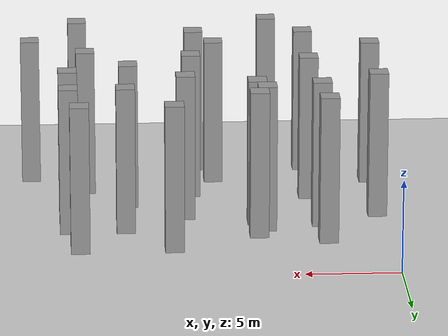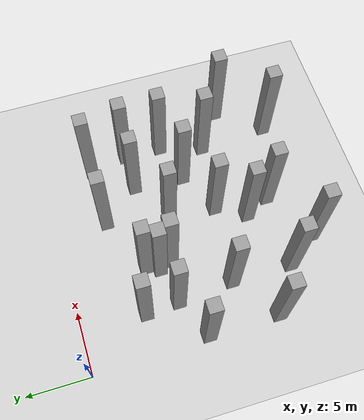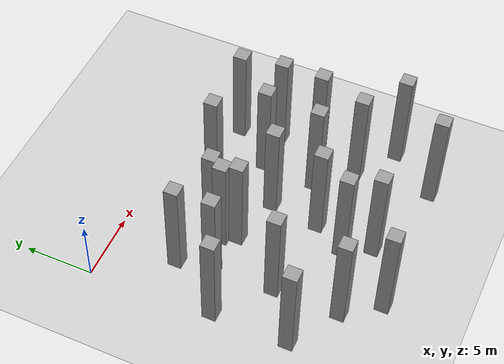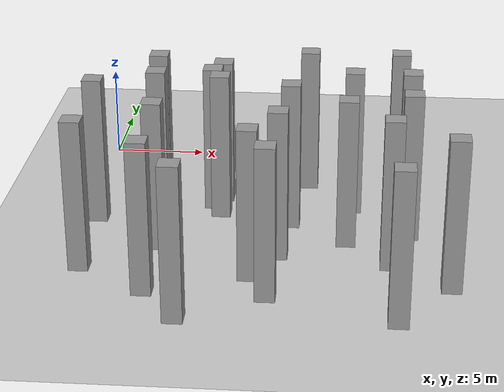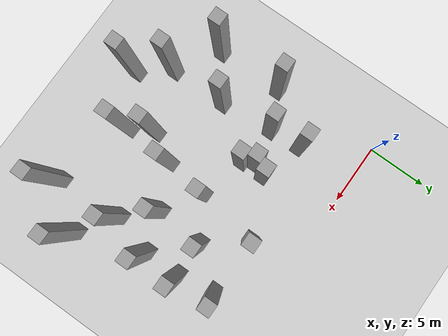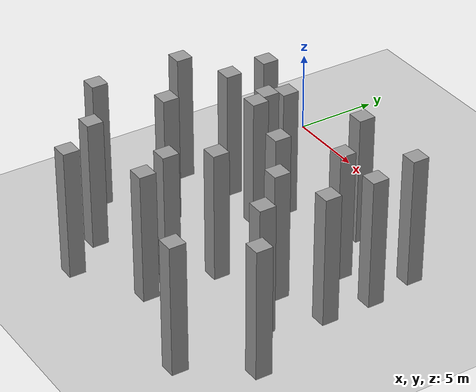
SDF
<sdf version="1.7">
 <world name="default">
  <model name="ground_plane">
   <static>1</static>
   <link name="link">
    <collision name="collision">
     <geometry><plane><normal>0 0 1</normal><size>100 100</size></plane></geometry>
     <surface>
      <contact><collide_bitmask>65535</collide_bitmask></contact>
      <friction><ode><mu>100</mu><mu2>50</mu2></ode></friction>
     </surface>
    </collision>
    <visual name="visual">
     <cast_shadows>0</cast_shadows>
     <geometry><plane><normal>0 0 1</normal><size>100 100</size></plane></geometry>
     <material>
      <script><uri>file://media/materials/scripts/gazebo.material</uri><name>Gazebo/Grey</name></script>
     </material>
    </visual>
   </link>
  </model>
  <model name="unit_box_static95_clone_52_clone_clone_17">
   <link name="link">
    <inertial>
     <mass>1</mass>
     <inertia>
      <ixx>0.166667</ixx>
      <ixy>0</ixy>
      <ixz>0</ixz>
      <iyy>0.166667</iyy>
      <iyz>0</iyz>
      <izz>0.166667</izz>
     </inertia>
    </inertial>
    <visual name="visual">
     <geometry><box><size>1 1 8</size></box></geometry>
     <material>
      <script><name>Gazebo/Grey</name><uri>file://media/materials/scripts/gazebo.material</uri></script>
      <shader type="pixel"/>
     </material>
    </visual>
    <collision name="collision">
     <geometry><box><size>1 1 8</size></box></geometry>
     <surface>
      <friction>
       <ode><mu>1</mu><mu2>1</mu2><fdir1>0 0 0</fdir1><slip1>0</slip1><slip2>0</slip2></ode>
       <torsional>
        <coefficient>1</coefficient>
        <patch_radius>0</patch_radius>
        <surface_radius>0</surface_radius>
        <use_patch_radius>1</use_patch_radius>
        <ode><slip>0</slip></ode>
       </torsional>
      </friction>
      <bounce><restitution_coefficient>0</restitution_coefficient><threshold>1e+06</threshold></bounce>
      <contact>
       <collide_without_contact>0</collide_without_contact>
       <collide_without_contact_bitmask>1</collide_without_contact_bitmask>
       <collide_bitmask>1</collide_bitmask>
       <ode>
        <soft_cfm>0</soft_cfm>
        <soft_erp>0.2</soft_erp>
        <kp>1e+13</kp>
        <kd>1</kd>
        <max_vel>0.01</max_vel>
        <min_depth>0</min_depth>
       </ode>
       <bullet>
        <split_impulse>1</split_impulse>
        <split_impulse_penetration_threshold>-0.01</split_impulse_penetration_threshold>
        <soft_cfm>0</soft_cfm>
        <soft_erp>0.2</soft_erp>
        <kp>1e+13</kp>
        <kd>1</kd>
       </bullet>
      </contact>
     </surface>
    </collision>
   </link>
   <static>1</static>
   <pose>6.52958 -7 4 0 -0 0</pose>
  </model>
  <model name="unit_box_static95_clone_52_clone_clone_18">
   <link name="link">
    <inertial>
     <mass>1</mass>
     <inertia>
      <ixx>0.166667</ixx>
      <ixy>0</ixy>
      <ixz>0</ixz>
      <iyy>0.166667</iyy>
      <iyz>0</iyz>
      <izz>0.166667</izz>
     </inertia>
    </inertial>
    <visual name="visual">
     <geometry><box><size>1 1 8</size></box></geometry>
     <material>
      <script><name>Gazebo/Grey</name><uri>file://media/materials/scripts/gazebo.material</uri></script>
      <shader type="pixel"/>
     </material>
    </visual>
    <collision name="collision">
     <geometry><box><size>1 1 8</size></box></geometry>
     <surface>
      <friction>
       <ode><mu>1</mu><mu2>1</mu2><fdir1>0 0 0</fdir1><slip1>0</slip1><slip2>0</slip2></ode>
       <torsional>
        <coefficient>1</coefficient>
        <patch_radius>0</patch_radius>
        <surface_radius>0</surface_radius>
        <use_patch_radius>1</use_patch_radius>
        <ode><slip>0</slip></ode>
       </torsional>
      </friction>
      <bounce><restitution_coefficient>0</restitution_coefficient><threshold>1e+06</threshold></bounce>
      <contact>
       <collide_without_contact>0</collide_without_contact>
       <collide_without_contact_bitmask>1</collide_without_contact_bitmask>
       <collide_bitmask>1</collide_bitmask>
       <ode>
        <soft_cfm>0</soft_cfm>
        <soft_erp>0.2</soft_erp>
        <kp>1e+13</kp>
        <kd>1</kd>
        <max_vel>0.01</max_vel>
        <min_depth>0</min_depth>
       </ode>
       <bullet>
        <split_impulse>1</split_impulse>
        <split_impulse_penetration_threshold>-0.01</split_impulse_penetration_threshold>
        <soft_cfm>0</soft_cfm>
        <soft_erp>0.2</soft_erp>
        <kp>1e+13</kp>
        <kd>1</kd>
       </bullet>
      </contact>
     </surface>
    </collision>
   </link>
   <static>1</static>
   <pose>3.40813 -5 4 0 -0 0</pose>
  </model>
  <model name="unit_box_static95_clone_52_clone_clone_42">
   <link name="link">
    <inertial>
     <mass>1</mass>
     <inertia>
      <ixx>0.166667</ixx>
      <ixy>0</ixy>
      <ixz>0</ixz>
      <iyy>0.166667</iyy>
      <iyz>0</iyz>
      <izz>0.166667</izz>
     </inertia>
    </inertial>
    <visual name="visual">
     <geometry><box><size>1 1 8</size></box></geometry>
     <material>
      <script><name>Gazebo/Grey</name><uri>file://media/materials/scripts/gazebo.material</uri></script>
      <shader type="pixel"/>
     </material>
    </visual>
    <collision name="collision">
     <geometry><box><size>1 1 8</size></box></geometry>
     <surface>
      <friction>
       <ode><mu>1</mu><mu2>1</mu2><fdir1>0 0 0</fdir1><slip1>0</slip1><slip2>0</slip2></ode>
       <torsional>
        <coefficient>1</coefficient>
        <patch_radius>0</patch_radius>
        <surface_radius>0</surface_radius>
        <use_patch_radius>1</use_patch_radius>
        <ode><slip>0</slip></ode>
       </torsional>
      </friction>
      <bounce><restitution_coefficient>0</restitution_coefficient><threshold>1e+06</threshold></bounce>
      <contact>
       <collide_without_contact>0</collide_without_contact>
       <collide_without_contact_bitmask>1</collide_without_contact_bitmask>
       <collide_bitmask>1</collide_bitmask>
       <ode>
        <soft_cfm>0</soft_cfm>
        <soft_erp>0.2</soft_erp>
        <kp>1e+13</kp>
        <kd>1</kd>
        <max_vel>0.01</max_vel>
        <min_depth>0</min_depth>
       </ode>
       <bullet>
        <split_impulse>1</split_impulse>
        <split_impulse_penetration_threshold>-0.01</split_impulse_penetration_threshold>
        <soft_cfm>0</soft_cfm>
        <soft_erp>0.2</soft_erp>
        <kp>1e+13</kp>
        <kd>1</kd>
       </bullet>
      </contact>
     </surface>
    </collision>
   </link>
   <static>1</static>
   <pose>0.491745 -14.561 4 0 -0 0</pose>
  </model>
  <model name="unit_box_static95_clone_52_clone_clone_43">
   <link name="link">
    <inertial>
     <mass>1</mass>
     <inertia>
      <ixx>0.166667</ixx>
      <ixy>0</ixy>
      <ixz>0</ixz>
      <iyy>0.166667</iyy>
      <iyz>0</iyz>
      <izz>0.166667</izz>
     </inertia>
    </inertial>
    <visual name="visual">
     <geometry><box><size>1 1 8</size></box></geometry>
     <material>
      <script><name>Gazebo/Grey</name><uri>file://media/materials/scripts/gazebo.material</uri></script>
      <shader type="pixel"/>
     </material>
    </visual>
    <collision name="collision">
     <geometry><box><size>1 1 8</size></box></geometry>
     <surface>
      <friction>
       <ode><mu>1</mu><mu2>1</mu2><fdir1>0 0 0</fdir1><slip1>0</slip1><slip2>0</slip2></ode>
       <torsional>
        <coefficient>1</coefficient>
        <patch_radius>0</patch_radius>
        <surface_radius>0</surface_radius>
        <use_patch_radius>1</use_patch_radius>
        <ode><slip>0</slip></ode>
       </torsional>
      </friction>
      <bounce><restitution_coefficient>0</restitution_coefficient><threshold>1e+06</threshold></bounce>
      <contact>
       <collide_without_contact>0</collide_without_contact>
       <collide_without_contact_bitmask>1</collide_without_contact_bitmask>
       <collide_bitmask>1</collide_bitmask>
       <ode>
        <soft_cfm>0</soft_cfm>
        <soft_erp>0.2</soft_erp>
        <kp>1e+13</kp>
        <kd>1</kd>
        <max_vel>0.01</max_vel>
        <min_depth>0</min_depth>
       </ode>
       <bullet>
        <split_impulse>1</split_impulse>
        <split_impulse_penetration_threshold>-0.01</split_impulse_penetration_threshold>
        <soft_cfm>0</soft_cfm>
        <soft_erp>0.2</soft_erp>
        <kp>1e+13</kp>
        <kd>1</kd>
       </bullet>
      </contact>
     </surface>
    </collision>
   </link>
   <static>1</static>
   <pose>4 -16.8143 4 0 -0 0</pose>
  </model>
  <model name="unit_box_static95_clone_52_clone_clone_44">
   <link name="link">
    <inertial>
     <mass>1</mass>
     <inertia>
      <ixx>0.166667</ixx>
      <ixy>0</ixy>
      <ixz>0</ixz>
      <iyy>0.166667</iyy>
      <iyz>0</iyz>
      <izz>0.166667</izz>
     </inertia>
    </inertial>
    <visual name="visual">
     <geometry><box><size>1 1 8</size></box></geometry>
     <material>
      <script><name>Gazebo/Grey</name><uri>file://media/materials/scripts/gazebo.material</uri></script>
      <shader type="pixel"/>
     </material>
    </visual>
    <collision name="collision">
     <geometry><box><size>1 1 8</size></box></geometry>
     <surface>
      <friction>
       <ode><mu>1</mu><mu2>1</mu2><fdir1>0 0 0</fdir1><slip1>0</slip1><slip2>0</slip2></ode>
       <torsional>
        <coefficient>1</coefficient>
        <patch_radius>0</patch_radius>
        <surface_radius>0</surface_radius>
        <use_patch_radius>1</use_patch_radius>
        <ode><slip>0</slip></ode>
       </torsional>
      </friction>
      <bounce><restitution_coefficient>0</restitution_coefficient><threshold>1e+06</threshold></bounce>
      <contact>
       <collide_without_contact>0</collide_without_contact>
       <collide_without_contact_bitmask>1</collide_without_contact_bitmask>
       <collide_bitmask>1</collide_bitmask>
       <ode>
        <soft_cfm>0</soft_cfm>
        <soft_erp>0.2</soft_erp>
        <kp>1e+13</kp>
        <kd>1</kd>
        <max_vel>0.01</max_vel>
        <min_depth>0</min_depth>
       </ode>
       <bullet>
        <split_impulse>1</split_impulse>
        <split_impulse_penetration_threshold>-0.01</split_impulse_penetration_threshold>
        <soft_cfm>0</soft_cfm>
        <soft_erp>0.2</soft_erp>
        <kp>1e+13</kp>
        <kd>1</kd>
       </bullet>
      </contact>
     </surface>
    </collision>
   </link>
   <static>1</static>
   <pose>4 -12 4 0 -0 0</pose>
  </model>
  <model name="unit_box_static95_clone_52_clone_clone_48">
   <link name="link">
    <inertial>
     <mass>1</mass>
     <inertia>
      <ixx>0.166667</ixx>
      <ixy>0</ixy>
      <ixz>0</ixz>
      <iyy>0.166667</iyy>
      <iyz>0</iyz>
      <izz>0.166667</izz>
     </inertia>
    </inertial>
    <visual name="visual">
     <geometry><box><size>1 1 8</size></box></geometry>
     <material>
      <script><name>Gazebo/Grey</name><uri>file://media/materials/scripts/gazebo.material</uri></script>
      <shader type="pixel"/>
     </material>
    </visual>
    <collision name="collision">
     <geometry><box><size>1 1 8</size></box></geometry>
     <surface>
      <friction>
       <ode><mu>1</mu><mu2>1</mu2><fdir1>0 0 0</fdir1><slip1>0</slip1><slip2>0</slip2></ode>
       <torsional>
        <coefficient>1</coefficient>
        <patch_radius>0</patch_radius>
        <surface_radius>0</surface_radius>
        <use_patch_radius>1</use_patch_radius>
        <ode><slip>0</slip></ode>
       </torsional>
      </friction>
      <bounce><restitution_coefficient>0</restitution_coefficient><threshold>1e+06</threshold></bounce>
      <contact>
       <collide_without_contact>0</collide_without_contact>
       <collide_without_contact_bitmask>1</collide_without_contact_bitmask>
       <collide_bitmask>1</collide_bitmask>
       <ode>
        <soft_cfm>0</soft_cfm>
        <soft_erp>0.2</soft_erp>
        <kp>1e+13</kp>
        <kd>1</kd>
        <max_vel>0.01</max_vel>
        <min_depth>0</min_depth>
       </ode>
       <bullet>
        <split_impulse>1</split_impulse>
        <split_impulse_penetration_threshold>-0.01</split_impulse_penetration_threshold>
        <soft_cfm>0</soft_cfm>
        <soft_erp>0.2</soft_erp>
        <kp>1e+13</kp>
        <kd>1</kd>
       </bullet>
      </contact>
     </surface>
    </collision>
   </link>
   <static>1</static>
   <pose>10.3235 -12.6654 4 0 -0 0</pose>
  </model>
  <model name="unit_box_static95_clone_52_clone_clone_50">
   <link name="link">
    <inertial>
     <mass>1</mass>
     <inertia>
      <ixx>0.166667</ixx>
      <ixy>0</ixy>
      <ixz>0</ixz>
      <iyy>0.166667</iyy>
      <iyz>0</iyz>
      <izz>0.166667</izz>
     </inertia>
    </inertial>
    <visual name="visual">
     <geometry><box><size>1 1 8</size></box></geometry>
     <material>
      <script><name>Gazebo/Grey</name><uri>file://media/materials/scripts/gazebo.material</uri></script>
      <shader type="pixel"/>
     </material>
    </visual>
    <collision name="collision">
     <geometry><box><size>1 1 8</size></box></geometry>
     <surface>
      <friction>
       <ode><mu>1</mu><mu2>1</mu2><fdir1>0 0 0</fdir1><slip1>0</slip1><slip2>0</slip2></ode>
       <torsional>
        <coefficient>1</coefficient>
        <patch_radius>0</patch_radius>
        <surface_radius>0</surface_radius>
        <use_patch_radius>1</use_patch_radius>
        <ode><slip>0</slip></ode>
       </torsional>
      </friction>
      <bounce><restitution_coefficient>0</restitution_coefficient><threshold>1e+06</threshold></bounce>
      <contact>
       <collide_without_contact>0</collide_without_contact>
       <collide_without_contact_bitmask>1</collide_without_contact_bitmask>
       <collide_bitmask>1</collide_bitmask>
       <ode>
        <soft_cfm>0</soft_cfm>
        <soft_erp>0.2</soft_erp>
        <kp>1e+13</kp>
        <kd>1</kd>
        <max_vel>0.01</max_vel>
        <min_depth>0</min_depth>
       </ode>
       <bullet>
        <split_impulse>1</split_impulse>
        <split_impulse_penetration_threshold>-0.01</split_impulse_penetration_threshold>
        <soft_cfm>0</soft_cfm>
        <soft_erp>0.2</soft_erp>
        <kp>1e+13</kp>
        <kd>1</kd>
       </bullet>
      </contact>
     </surface>
    </collision>
   </link>
   <static>1</static>
   <pose>9 -15 4 0 -0 0</pose>
  </model>
  <model name="unit_box_static95_clone_52_clone_clone_51">
   <link name="link">
    <inertial>
     <mass>1</mass>
     <inertia>
      <ixx>0.166667</ixx>
      <ixy>0</ixy>
      <ixz>0</ixz>
      <iyy>0.166667</iyy>
      <iyz>0</iyz>
      <izz>0.166667</izz>
     </inertia>
    </inertial>
    <visual name="visual">
     <geometry><box><size>1 1 8</size></box></geometry>
     <material>
      <script><name>Gazebo/Grey</name><uri>file://media/materials/scripts/gazebo.material</uri></script>
      <shader type="pixel"/>
     </material>
    </visual>
    <collision name="collision">
     <geometry><box><size>1 1 8</size></box></geometry>
     <surface>
      <friction>
       <ode><mu>1</mu><mu2>1</mu2><fdir1>0 0 0</fdir1><slip1>0</slip1><slip2>0</slip2></ode>
       <torsional>
        <coefficient>1</coefficient>
        <patch_radius>0</patch_radius>
        <surface_radius>0</surface_radius>
        <use_patch_radius>1</use_patch_radius>
        <ode><slip>0</slip></ode>
       </torsional>
      </friction>
      <bounce><restitution_coefficient>0</restitution_coefficient><threshold>1e+06</threshold></bounce>
      <contact>
       <collide_without_contact>0</collide_without_contact>
       <collide_without_contact_bitmask>1</collide_without_contact_bitmask>
       <collide_bitmask>1</collide_bitmask>
       <ode>
        <soft_cfm>0</soft_cfm>
        <soft_erp>0.2</soft_erp>
        <kp>1e+13</kp>
        <kd>1</kd>
        <max_vel>0.01</max_vel>
        <min_depth>0</min_depth>
       </ode>
       <bullet>
        <split_impulse>1</split_impulse>
        <split_impulse_penetration_threshold>-0.01</split_impulse_penetration_threshold>
        <soft_cfm>0</soft_cfm>
        <soft_erp>0.2</soft_erp>
        <kp>1e+13</kp>
        <kd>1</kd>
       </bullet>
      </contact>
     </surface>
    </collision>
   </link>
   <static>1</static>
   <pose>10 -17 4 0 -0 0</pose>
  </model>
  <model name="unit_box_static95_clone_52_clone_clone_52">
   <link name="link">
    <inertial>
     <mass>1</mass>
     <inertia>
      <ixx>0.166667</ixx>
      <ixy>0</ixy>
      <ixz>0</ixz>
      <iyy>0.166667</iyy>
      <iyz>0</iyz>
      <izz>0.166667</izz>
     </inertia>
    </inertial>
    <visual name="visual">
     <geometry><box><size>1 1 8</size></box></geometry>
     <material>
      <script><name>Gazebo/Grey</name><uri>file://media/materials/scripts/gazebo.material</uri></script>
      <shader type="pixel"/>
     </material>
    </visual>
    <collision name="collision">
     <geometry><box><size>1 1 8</size></box></geometry>
     <surface>
      <friction>
       <ode><mu>1</mu><mu2>1</mu2><fdir1>0 0 0</fdir1><slip1>0</slip1><slip2>0</slip2></ode>
       <torsional>
        <coefficient>1</coefficient>
        <patch_radius>0</patch_radius>
        <surface_radius>0</surface_radius>
        <use_patch_radius>1</use_patch_radius>
        <ode><slip>0</slip></ode>
       </torsional>
      </friction>
      <bounce><restitution_coefficient>0</restitution_coefficient><threshold>1e+06</threshold></bounce>
      <contact>
       <collide_without_contact>0</collide_without_contact>
       <collide_without_contact_bitmask>1</collide_without_contact_bitmask>
       <collide_bitmask>1</collide_bitmask>
       <ode>
        <soft_cfm>0</soft_cfm>
        <soft_erp>0.2</soft_erp>
        <kp>1e+13</kp>
        <kd>1</kd>
        <max_vel>0.01</max_vel>
        <min_depth>0</min_depth>
       </ode>
       <bullet>
        <split_impulse>1</split_impulse>
        <split_impulse_penetration_threshold>-0.01</split_impulse_penetration_threshold>
        <soft_cfm>0</soft_cfm>
        <soft_erp>0.2</soft_erp>
        <kp>1e+13</kp>
        <kd>1</kd>
       </bullet>
      </contact>
     </surface>
    </collision>
   </link>
   <static>1</static>
   <pose>13.75 -11.0133 4 0 -0 0</pose>
  </model>
  <model name="unit_box_static95_clone_52_clone_clone_90">
   <link name="link">
    <inertial>
     <mass>1</mass>
     <inertia>
      <ixx>0.166667</ixx>
      <ixy>0</ixy>
      <ixz>0</ixz>
      <iyy>0.166667</iyy>
      <iyz>0</iyz>
      <izz>0.166667</izz>
     </inertia>
    </inertial>
    <visual name="visual">
     <geometry><box><size>1 1 8</size></box></geometry>
     <material>
      <script><name>Gazebo/Grey</name><uri>file://media/materials/scripts/gazebo.material</uri></script>
      <shader type="pixel"/>
     </material>
    </visual>
    <collision name="collision">
     <geometry><box><size>1 1 8</size></box></geometry>
     <surface>
      <friction>
       <ode><mu>1</mu><mu2>1</mu2><fdir1>0 0 0</fdir1><slip1>0</slip1><slip2>0</slip2></ode>
       <torsional>
        <coefficient>1</coefficient>
        <patch_radius>0</patch_radius>
        <surface_radius>0</surface_radius>
        <use_patch_radius>1</use_patch_radius>
        <ode><slip>0</slip></ode>
       </torsional>
      </friction>
      <bounce><restitution_coefficient>0</restitution_coefficient><threshold>1e+06</threshold></bounce>
      <contact>
       <collide_without_contact>0</collide_without_contact>
       <collide_without_contact_bitmask>1</collide_without_contact_bitmask>
       <collide_bitmask>1</collide_bitmask>
       <ode>
        <soft_cfm>0</soft_cfm>
        <soft_erp>0.2</soft_erp>
        <kp>1e+13</kp>
        <kd>1</kd>
        <max_vel>0.01</max_vel>
        <min_depth>0</min_depth>
       </ode>
       <bullet>
        <split_impulse>1</split_impulse>
        <split_impulse_penetration_threshold>-0.01</split_impulse_penetration_threshold>
        <soft_cfm>0</soft_cfm>
        <soft_erp>0.2</soft_erp>
        <kp>1e+13</kp>
        <kd>1</kd>
       </bullet>
      </contact>
     </surface>
    </collision>
   </link>
   <static>1</static>
   <pose>16.4623 -4 4 0 -0 0</pose>
  </model>
  <model name="unit_box_static95_clone_52_clone_clone_91">
   <link name="link">
    <inertial>
     <mass>1</mass>
     <inertia>
      <ixx>0.166667</ixx>
      <ixy>0</ixy>
      <ixz>0</ixz>
      <iyy>0.166667</iyy>
      <iyz>0</iyz>
      <izz>0.166667</izz>
     </inertia>
    </inertial>
    <visual name="visual">
     <geometry><box><size>1 1 8</size></box></geometry>
     <material>
      <script><name>Gazebo/Grey</name><uri>file://media/materials/scripts/gazebo.material</uri></script>
      <shader type="pixel"/>
     </material>
    </visual>
    <collision name="collision">
     <geometry><box><size>1 1 8</size></box></geometry>
     <surface>
      <friction>
       <ode><mu>1</mu><mu2>1</mu2><fdir1>0 0 0</fdir1><slip1>0</slip1><slip2>0</slip2></ode>
       <torsional>
        <coefficient>1</coefficient>
        <patch_radius>0</patch_radius>
        <surface_radius>0</surface_radius>
        <use_patch_radius>1</use_patch_radius>
        <ode><slip>0</slip></ode>
       </torsional>
      </friction>
      <bounce><restitution_coefficient>0</restitution_coefficient><threshold>1e+06</threshold></bounce>
      <contact>
       <collide_without_contact>0</collide_without_contact>
       <collide_without_contact_bitmask>1</collide_without_contact_bitmask>
       <collide_bitmask>1</collide_bitmask>
       <ode>
        <soft_cfm>0</soft_cfm>
        <soft_erp>0.2</soft_erp>
        <kp>1e+13</kp>
        <kd>1</kd>
        <max_vel>0.01</max_vel>
        <min_depth>0</min_depth>
       </ode>
       <bullet>
        <split_impulse>1</split_impulse>
        <split_impulse_penetration_threshold>-0.01</split_impulse_penetration_threshold>
        <soft_cfm>0</soft_cfm>
        <soft_erp>0.2</soft_erp>
        <kp>1e+13</kp>
        <kd>1</kd>
       </bullet>
      </contact>
     </surface>
    </collision>
   </link>
   <static>1</static>
   <pose>17 -7 4 0 -0 0</pose>
  </model>
  <model name="unit_box_static95_clone_52_clone_clone_92">
   <link name="link">
    <inertial>
     <mass>1</mass>
     <inertia>
      <ixx>0.166667</ixx>
      <ixy>0</ixy>
      <ixz>0</ixz>
      <iyy>0.166667</iyy>
      <iyz>0</iyz>
      <izz>0.166667</izz>
     </inertia>
    </inertial>
    <visual name="visual">
     <geometry><box><size>1 1 8</size></box></geometry>
     <material>
      <script><name>Gazebo/Grey</name><uri>file://media/materials/scripts/gazebo.material</uri></script>
      <shader type="pixel"/>
     </material>
    </visual>
    <collision name="collision">
     <geometry><box><size>1 1 8</size></box></geometry>
     <surface>
      <friction>
       <ode><mu>1</mu><mu2>1</mu2><fdir1>0 0 0</fdir1><slip1>0</slip1><slip2>0</slip2></ode>
       <torsional>
        <coefficient>1</coefficient>
        <patch_radius>0</patch_radius>
        <surface_radius>0</surface_radius>
        <use_patch_radius>1</use_patch_radius>
        <ode><slip>0</slip></ode>
       </torsional>
      </friction>
      <bounce><restitution_coefficient>0</restitution_coefficient><threshold>1e+06</threshold></bounce>
      <contact>
       <collide_without_contact>0</collide_without_contact>
       <collide_without_contact_bitmask>1</collide_without_contact_bitmask>
       <collide_bitmask>1</collide_bitmask>
       <ode>
        <soft_cfm>0</soft_cfm>
        <soft_erp>0.2</soft_erp>
        <kp>1e+13</kp>
        <kd>1</kd>
        <max_vel>0.01</max_vel>
        <min_depth>0</min_depth>
       </ode>
       <bullet>
        <split_impulse>1</split_impulse>
        <split_impulse_penetration_threshold>-0.01</split_impulse_penetration_threshold>
        <soft_cfm>0</soft_cfm>
        <soft_erp>0.2</soft_erp>
        <kp>1e+13</kp>
        <kd>1</kd>
       </bullet>
      </contact>
     </surface>
    </collision>
   </link>
   <static>1</static>
   <pose>14 -7 4 0 -0 0</pose>
  </model>
  <model name="unit_box_static95_clone_52_clone_clone_93">
   <link name="link">
    <inertial>
     <mass>1</mass>
     <inertia>
      <ixx>0.166667</ixx>
      <ixy>0</ixy>
      <ixz>0</ixz>
      <iyy>0.166667</iyy>
      <iyz>0</iyz>
      <izz>0.166667</izz>
     </inertia>
    </inertial>
    <visual name="visual">
     <geometry><box><size>1 1 8</size></box></geometry>
     <material>
      <script><name>Gazebo/Grey</name><uri>file://media/materials/scripts/gazebo.material</uri></script>
      <shader type="pixel"/>
     </material>
    </visual>
    <collision name="collision">
     <geometry><box><size>1 1 8</size></box></geometry>
     <surface>
      <friction>
       <ode><mu>1</mu><mu2>1</mu2><fdir1>0 0 0</fdir1><slip1>0</slip1><slip2>0</slip2></ode>
       <torsional>
        <coefficient>1</coefficient>
        <patch_radius>0</patch_radius>
        <surface_radius>0</surface_radius>
        <use_patch_radius>1</use_patch_radius>
        <ode><slip>0</slip></ode>
       </torsional>
      </friction>
      <bounce><restitution_coefficient>0</restitution_coefficient><threshold>1e+06</threshold></bounce>
      <contact>
       <collide_without_contact>0</collide_without_contact>
       <collide_without_contact_bitmask>1</collide_without_contact_bitmask>
       <collide_bitmask>1</collide_bitmask>
       <ode>
        <soft_cfm>0</soft_cfm>
        <soft_erp>0.2</soft_erp>
        <kp>1e+13</kp>
        <kd>1</kd>
        <max_vel>0.01</max_vel>
        <min_depth>0</min_depth>
       </ode>
       <bullet>
        <split_impulse>1</split_impulse>
        <split_impulse_penetration_threshold>-0.01</split_impulse_penetration_threshold>
        <soft_cfm>0</soft_cfm>
        <soft_erp>0.2</soft_erp>
        <kp>1e+13</kp>
        <kd>1</kd>
       </bullet>
      </contact>
     </surface>
    </collision>
   </link>
   <static>1</static>
   <pose>16 -13.4011 4 0 -0 0</pose>
  </model>
  <model name="unit_box_static95_clone_52_clone_clone_94">
   <link name="link">
    <inertial>
     <mass>1</mass>
     <inertia>
      <ixx>0.166667</ixx>
      <ixy>0</ixy>
      <ixz>0</ixz>
      <iyy>0.166667</iyy>
      <iyz>0</iyz>
      <izz>0.166667</izz>
     </inertia>
    </inertial>
    <visual name="visual">
     <geometry><box><size>1 1 8</size></box></geometry>
     <material>
      <script><name>Gazebo/Grey</name><uri>file://media/materials/scripts/gazebo.material</uri></script>
      <shader type="pixel"/>
     </material>
    </visual>
    <collision name="collision">
     <geometry><box><size>1 1 8</size></box></geometry>
     <surface>
      <friction>
       <ode><mu>1</mu><mu2>1</mu2><fdir1>0 0 0</fdir1><slip1>0</slip1><slip2>0</slip2></ode>
       <torsional>
        <coefficient>1</coefficient>
        <patch_radius>0</patch_radius>
        <surface_radius>0</surface_radius>
        <use_patch_radius>1</use_patch_radius>
        <ode><slip>0</slip></ode>
       </torsional>
      </friction>
      <bounce><restitution_coefficient>0</restitution_coefficient><threshold>1e+06</threshold></bounce>
      <contact>
       <collide_without_contact>0</collide_without_contact>
       <collide_without_contact_bitmask>1</collide_without_contact_bitmask>
       <collide_bitmask>1</collide_bitmask>
       <ode>
        <soft_cfm>0</soft_cfm>
        <soft_erp>0.2</soft_erp>
        <kp>1e+13</kp>
        <kd>1</kd>
        <max_vel>0.01</max_vel>
        <min_depth>0</min_depth>
       </ode>
       <bullet>
        <split_impulse>1</split_impulse>
        <split_impulse_penetration_threshold>-0.01</split_impulse_penetration_threshold>
        <soft_cfm>0</soft_cfm>
        <soft_erp>0.2</soft_erp>
        <kp>1e+13</kp>
        <kd>1</kd>
       </bullet>
      </contact>
     </surface>
    </collision>
   </link>
   <static>1</static>
   <pose>7 -6 4 0 -0 0</pose>
  </model>
  <model name="unit_box_static95_clone_52_clone_clone_95">
   <link name="link">
    <inertial>
     <mass>1</mass>
     <inertia>
      <ixx>0.166667</ixx>
      <ixy>0</ixy>
      <ixz>0</ixz>
      <iyy>0.166667</iyy>
      <iyz>0</iyz>
      <izz>0.166667</izz>
     </inertia>
    </inertial>
    <visual name="visual">
     <geometry><box><size>1 1 8</size></box></geometry>
     <material>
      <script><name>Gazebo/Grey</name><uri>file://media/materials/scripts/gazebo.material</uri></script>
      <shader type="pixel"/>
     </material>
    </visual>
    <collision name="collision">
     <geometry><box><size>1 1 8</size></box></geometry>
     <surface>
      <friction>
       <ode><mu>1</mu><mu2>1</mu2><fdir1>0 0 0</fdir1><slip1>0</slip1><slip2>0</slip2></ode>
       <torsional>
        <coefficient>1</coefficient>
        <patch_radius>0</patch_radius>
        <surface_radius>0</surface_radius>
        <use_patch_radius>1</use_patch_radius>
        <ode><slip>0</slip></ode>
       </torsional>
      </friction>
      <bounce><restitution_coefficient>0</restitution_coefficient><threshold>1e+06</threshold></bounce>
      <contact>
       <collide_without_contact>0</collide_without_contact>
       <collide_without_contact_bitmask>1</collide_without_contact_bitmask>
       <collide_bitmask>1</collide_bitmask>
       <ode>
        <soft_cfm>0</soft_cfm>
        <soft_erp>0.2</soft_erp>
        <kp>1e+13</kp>
        <kd>1</kd>
        <max_vel>0.01</max_vel>
        <min_depth>0</min_depth>
       </ode>
       <bullet>
        <split_impulse>1</split_impulse>
        <split_impulse_penetration_threshold>-0.01</split_impulse_penetration_threshold>
        <soft_cfm>0</soft_cfm>
        <soft_erp>0.2</soft_erp>
        <kp>1e+13</kp>
        <kd>1</kd>
       </bullet>
      </contact>
     </surface>
    </collision>
   </link>
   <static>1</static>
   <pose>7 -8 4 0 -0 0</pose>
  </model>
  <model name="unit_box_static95_clone_52_clone_clone_96">
   <link name="link">
    <inertial>
     <mass>1</mass>
     <inertia>
      <ixx>0.166667</ixx>
      <ixy>0</ixy>
      <ixz>0</ixz>
      <iyy>0.166667</iyy>
      <iyz>0</iyz>
      <izz>0.166667</izz>
     </inertia>
    </inertial>
    <visual name="visual">
     <geometry><box><size>1 1 8</size></box></geometry>
     <material>
      <script><name>Gazebo/Grey</name><uri>file://media/materials/scripts/gazebo.material</uri></script>
      <shader type="pixel"/>
     </material>
    </visual>
    <collision name="collision">
     <geometry><box><size>1 1 8</size></box></geometry>
     <surface>
      <friction>
       <ode><mu>1</mu><mu2>1</mu2><fdir1>0 0 0</fdir1><slip1>0</slip1><slip2>0</slip2></ode>
       <torsional>
        <coefficient>1</coefficient>
        <patch_radius>0</patch_radius>
        <surface_radius>0</surface_radius>
        <use_patch_radius>1</use_patch_radius>
        <ode><slip>0</slip></ode>
       </torsional>
      </friction>
      <bounce><restitution_coefficient>0</restitution_coefficient><threshold>1e+06</threshold></bounce>
      <contact>
       <collide_without_contact>0</collide_without_contact>
       <collide_without_contact_bitmask>1</collide_without_contact_bitmask>
       <collide_bitmask>1</collide_bitmask>
       <ode>
        <soft_cfm>0</soft_cfm>
        <soft_erp>0.2</soft_erp>
        <kp>1e+13</kp>
        <kd>1</kd>
        <max_vel>0.01</max_vel>
        <min_depth>0</min_depth>
       </ode>
       <bullet>
        <split_impulse>1</split_impulse>
        <split_impulse_penetration_threshold>-0.01</split_impulse_penetration_threshold>
        <soft_cfm>0</soft_cfm>
        <soft_erp>0.2</soft_erp>
        <kp>1e+13</kp>
        <kd>1</kd>
       </bullet>
      </contact>
     </surface>
    </collision>
   </link>
   <static>1</static>
   <pose>0.49359 -9 4 0 -0 0</pose>
  </model>
  <model name="unit_box_static95_clone_52_clone_clone_120">
   <link name="link">
    <inertial>
     <mass>1</mass>
     <inertia>
      <ixx>0.166667</ixx>
      <ixy>0</ixy>
      <ixz>0</ixz>
      <iyy>0.166667</iyy>
      <iyz>0</iyz>
      <izz>0.166667</izz>
     </inertia>
    </inertial>
    <visual name="visual">
     <geometry><box><size>1 1 8</size></box></geometry>
     <material>
      <script><name>Gazebo/Grey</name><uri>file://media/materials/scripts/gazebo.material</uri></script>
      <shader type="pixel"/>
     </material>
    </visual>
    <collision name="collision">
     <geometry><box><size>1 1 8</size></box></geometry>
     <surface>
      <friction>
       <ode><mu>1</mu><mu2>1</mu2><fdir1>0 0 0</fdir1><slip1>0</slip1><slip2>0</slip2></ode>
       <torsional>
        <coefficient>1</coefficient>
        <patch_radius>0</patch_radius>
        <surface_radius>0</surface_radius>
        <use_patch_radius>1</use_patch_radius>
        <ode><slip>0</slip></ode>
       </torsional>
      </friction>
      <bounce><restitution_coefficient>0</restitution_coefficient><threshold>1e+06</threshold></bounce>
      <contact>
       <collide_without_contact>0</collide_without_contact>
       <collide_without_contact_bitmask>1</collide_without_contact_bitmask>
       <collide_bitmask>1</collide_bitmask>
       <ode>
        <soft_cfm>0</soft_cfm>
        <soft_erp>0.2</soft_erp>
        <kp>1e+13</kp>
        <kd>1</kd>
        <max_vel>0.01</max_vel>
        <min_depth>0</min_depth>
       </ode>
       <bullet>
        <split_impulse>1</split_impulse>
        <split_impulse_penetration_threshold>-0.01</split_impulse_penetration_threshold>
        <soft_cfm>0</soft_cfm>
        <soft_erp>0.2</soft_erp>
        <kp>1e+13</kp>
        <kd>1</kd>
       </bullet>
      </contact>
     </surface>
    </collision>
   </link>
   <static>1</static>
   <pose>3.59626 -7.59213 4 0 -0 0</pose>
  </model>
  <model name="unit_box_static95_clone_52_clone_clone_124">
   <link name="link">
    <inertial>
     <mass>1</mass>
     <inertia>
      <ixx>0.166667</ixx>
      <ixy>0</ixy>
      <ixz>0</ixz>
      <iyy>0.166667</iyy>
      <iyz>0</iyz>
      <izz>0.166667</izz>
     </inertia>
    </inertial>
    <visual name="visual">
     <geometry><box><size>1 1 8</size></box></geometry>
     <material>
      <script><name>Gazebo/Grey</name><uri>file://media/materials/scripts/gazebo.material</uri></script>
      <shader type="pixel"/>
     </material>
    </visual>
    <collision name="collision">
     <geometry><box><size>1 1 8</size></box></geometry>
     <surface>
      <friction>
       <ode><mu>1</mu><mu2>1</mu2><fdir1>0 0 0</fdir1><slip1>0</slip1><slip2>0</slip2></ode>
       <torsional>
        <coefficient>1</coefficient>
        <patch_radius>0</patch_radius>
        <surface_radius>0</surface_radius>
        <use_patch_radius>1</use_patch_radius>
        <ode><slip>0</slip></ode>
       </torsional>
      </friction>
      <bounce><restitution_coefficient>0</restitution_coefficient><threshold>1e+06</threshold></bounce>
      <contact>
       <collide_without_contact>0</collide_without_contact>
       <collide_without_contact_bitmask>1</collide_without_contact_bitmask>
       <collide_bitmask>1</collide_bitmask>
       <ode>
        <soft_cfm>0</soft_cfm>
        <soft_erp>0.2</soft_erp>
        <kp>1e+13</kp>
        <kd>1</kd>
        <max_vel>0.01</max_vel>
        <min_depth>0</min_depth>
       </ode>
       <bullet>
        <split_impulse>1</split_impulse>
        <split_impulse_penetration_threshold>-0.01</split_impulse_penetration_threshold>
        <soft_cfm>0</soft_cfm>
        <soft_erp>0.2</soft_erp>
        <kp>1e+13</kp>
        <kd>1</kd>
       </bullet>
      </contact>
     </surface>
    </collision>
   </link>
   <static>1</static>
   <pose>16.354 -19 4 0 -0 0</pose>
  </model>
  <model name="unit_box_static95_clone_52_clone_clone_125">
   <link name="link">
    <inertial>
     <mass>1</mass>
     <inertia>
      <ixx>0.166667</ixx>
      <ixy>0</ixy>
      <ixz>0</ixz>
      <iyy>0.166667</iyy>
      <iyz>0</iyz>
      <izz>0.166667</izz>
     </inertia>
    </inertial>
    <visual name="visual">
     <geometry><box><size>1 1 8</size></box></geometry>
     <material>
      <script><name>Gazebo/Grey</name><uri>file://media/materials/scripts/gazebo.material</uri></script>
      <shader type="pixel"/>
     </material>
    </visual>
    <collision name="collision">
     <geometry><box><size>1 1 8</size></box></geometry>
     <surface>
      <friction>
       <ode><mu>1</mu><mu2>1</mu2><fdir1>0 0 0</fdir1><slip1>0</slip1><slip2>0</slip2></ode>
       <torsional>
        <coefficient>1</coefficient>
        <patch_radius>0</patch_radius>
        <surface_radius>0</surface_radius>
        <use_patch_radius>1</use_patch_radius>
        <ode><slip>0</slip></ode>
       </torsional>
      </friction>
      <bounce><restitution_coefficient>0</restitution_coefficient><threshold>1e+06</threshold></bounce>
      <contact>
       <collide_without_contact>0</collide_without_contact>
       <collide_without_contact_bitmask>1</collide_without_contact_bitmask>
       <collide_bitmask>1</collide_bitmask>
       <ode>
        <soft_cfm>0</soft_cfm>
        <soft_erp>0.2</soft_erp>
        <kp>1e+13</kp>
        <kd>1</kd>
        <max_vel>0.01</max_vel>
        <min_depth>0</min_depth>
       </ode>
       <bullet>
        <split_impulse>1</split_impulse>
        <split_impulse_penetration_threshold>-0.01</split_impulse_penetration_threshold>
        <soft_cfm>0</soft_cfm>
        <soft_erp>0.2</soft_erp>
        <kp>1e+13</kp>
        <kd>1</kd>
       </bullet>
      </contact>
     </surface>
    </collision>
   </link>
   <static>1</static>
   <pose>18.9723 -15.5294 4 0 -0 0</pose>
  </model>
  <model name="unit_box_static95_clone_52_clone_clone_126">
   <link name="link">
    <inertial>
     <mass>1</mass>
     <inertia>
      <ixx>0.166667</ixx>
      <ixy>0</ixy>
      <ixz>0</ixz>
      <iyy>0.166667</iyy>
      <iyz>0</iyz>
      <izz>0.166667</izz>
     </inertia>
    </inertial>
    <visual name="visual">
     <geometry><box><size>1 1 8</size></box></geometry>
     <material>
      <script><name>Gazebo/Grey</name><uri>file://media/materials/scripts/gazebo.material</uri></script>
      <shader type="pixel"/>
     </material>
    </visual>
    <collision name="collision">
     <geometry><box><size>1 1 8</size></box></geometry>
     <surface>
      <friction>
       <ode><mu>1</mu><mu2>1</mu2><fdir1>0 0 0</fdir1><slip1>0</slip1><slip2>0</slip2></ode>
       <torsional>
        <coefficient>1</coefficient>
        <patch_radius>0</patch_radius>
        <surface_radius>0</surface_radius>
        <use_patch_radius>1</use_patch_radius>
        <ode><slip>0</slip></ode>
       </torsional>
      </friction>
      <bounce><restitution_coefficient>0</restitution_coefficient><threshold>1e+06</threshold></bounce>
      <contact>
       <collide_without_contact>0</collide_without_contact>
       <collide_without_contact_bitmask>1</collide_without_contact_bitmask>
       <collide_bitmask>1</collide_bitmask>
       <ode>
        <soft_cfm>0</soft_cfm>
        <soft_erp>0.2</soft_erp>
        <kp>1e+13</kp>
        <kd>1</kd>
        <max_vel>0.01</max_vel>
        <min_depth>0</min_depth>
       </ode>
       <bullet>
        <split_impulse>1</split_impulse>
        <split_impulse_penetration_threshold>-0.01</split_impulse_penetration_threshold>
        <soft_cfm>0</soft_cfm>
        <soft_erp>0.2</soft_erp>
        <kp>1e+13</kp>
        <kd>1</kd>
       </bullet>
      </contact>
     </surface>
    </collision>
   </link>
   <static>1</static>
   <pose>17 -10 4 0 -0 0</pose>
  </model>
  <model name="unit_box_static95_clone_52_clone_clone_127">
   <link name="link">
    <inertial>
     <mass>1</mass>
     <inertia>
      <ixx>0.166667</ixx>
      <ixy>0</ixy>
      <ixz>0</ixz>
      <iyy>0.166667</iyy>
      <iyz>0</iyz>
      <izz>0.166667</izz>
     </inertia>
    </inertial>
    <visual name="visual">
     <geometry><box><size>1 1 8</size></box></geometry>
     <material>
      <script><name>Gazebo/Grey</name><uri>file://media/materials/scripts/gazebo.material</uri></script>
      <shader type="pixel"/>
     </material>
    </visual>
    <collision name="collision">
     <geometry><box><size>1 1 8</size></box></geometry>
     <surface>
      <friction>
       <ode><mu>1</mu><mu2>1</mu2><fdir1>0 0 0</fdir1><slip1>0</slip1><slip2>0</slip2></ode>
       <torsional>
        <coefficient>1</coefficient>
        <patch_radius>0</patch_radius>
        <surface_radius>0</surface_radius>
        <use_patch_radius>1</use_patch_radius>
        <ode><slip>0</slip></ode>
       </torsional>
      </friction>
      <bounce><restitution_coefficient>0</restitution_coefficient><threshold>1e+06</threshold></bounce>
      <contact>
       <collide_without_contact>0</collide_without_contact>
       <collide_without_contact_bitmask>1</collide_without_contact_bitmask>
       <collide_bitmask>1</collide_bitmask>
       <ode>
        <soft_cfm>0</soft_cfm>
        <soft_erp>0.2</soft_erp>
        <kp>1e+13</kp>
        <kd>1</kd>
        <max_vel>0.01</max_vel>
        <min_depth>0</min_depth>
       </ode>
       <bullet>
        <split_impulse>1</split_impulse>
        <split_impulse_penetration_threshold>-0.01</split_impulse_penetration_threshold>
        <soft_cfm>0</soft_cfm>
        <soft_erp>0.2</soft_erp>
        <kp>1e+13</kp>
        <kd>1</kd>
       </bullet>
      </contact>
     </surface>
    </collision>
   </link>
   <static>1</static>
   <pose>10.7604 -9 4 0 -0 0</pose>
  </model>
  <model name="unit_box_static95_clone_52_clone_clone_130">
   <link name="link">
    <inertial>
     <mass>1</mass>
     <inertia>
      <ixx>0.166667</ixx>
      <ixy>0</ixy>
      <ixz>0</ixz>
      <iyy>0.166667</iyy>
      <iyz>0</iyz>
      <izz>0.166667</izz>
     </inertia>
    </inertial>
    <visual name="visual">
     <geometry><box><size>1 1 8</size></box></geometry>
     <material>
      <script><name>Gazebo/Grey</name><uri>file://media/materials/scripts/gazebo.material</uri></script>
      <shader type="pixel"/>
     </material>
    </visual>
    <collision name="collision">
     <geometry><box><size>1 1 8</size></box></geometry>
     <surface>
      <friction>
       <ode><mu>1</mu><mu2>1</mu2><fdir1>0 0 0</fdir1><slip1>0</slip1><slip2>0</slip2></ode>
       <torsional>
        <coefficient>1</coefficient>
        <patch_radius>0</patch_radius>
        <surface_radius>0</surface_radius>
        <use_patch_radius>1</use_patch_radius>
        <ode><slip>0</slip></ode>
       </torsional>
      </friction>
      <bounce><restitution_coefficient>0</restitution_coefficient><threshold>1e+06</threshold></bounce>
      <contact>
       <collide_without_contact>0</collide_without_contact>
       <collide_without_contact_bitmask>1</collide_without_contact_bitmask>
       <collide_bitmask>1</collide_bitmask>
       <ode>
        <soft_cfm>0</soft_cfm>
        <soft_erp>0.2</soft_erp>
        <kp>1e+13</kp>
        <kd>1</kd>
        <max_vel>0.01</max_vel>
        <min_depth>0</min_depth>
       </ode>
       <bullet>
        <split_impulse>1</split_impulse>
        <split_impulse_penetration_threshold>-0.01</split_impulse_penetration_threshold>
        <soft_cfm>0</soft_cfm>
        <soft_erp>0.2</soft_erp>
        <kp>1e+13</kp>
        <kd>1</kd>
       </bullet>
      </contact>
     </surface>
    </collision>
   </link>
   <static>1</static>
   <pose>11.5453 -4 4 0 -0 0</pose>
  </model>
  <model name="unit_box_static95_clone_52_clone_clone_134">
   <link name="link">
    <inertial>
     <mass>1</mass>
     <inertia>
      <ixx>0.166667</ixx>
      <ixy>0</ixy>
      <ixz>0</ixz>
      <iyy>0.166667</iyy>
      <iyz>0</iyz>
      <izz>0.166667</izz>
     </inertia>
    </inertial>
    <visual name="visual">
     <geometry><box><size>1 1 8</size></box></geometry>
     <material>
      <script><name>Gazebo/Grey</name><uri>file://media/materials/scripts/gazebo.material</uri></script>
      <shader type="pixel"/>
     </material>
    </visual>
    <collision name="collision">
     <geometry><box><size>1 1 8</size></box></geometry>
     <surface>
      <friction>
       <ode><mu>1</mu><mu2>1</mu2><fdir1>0 0 0</fdir1><slip1>0</slip1><slip2>0</slip2></ode>
       <torsional>
        <coefficient>1</coefficient>
        <patch_radius>0</patch_radius>
        <surface_radius>0</surface_radius>
        <use_patch_radius>1</use_patch_radius>
        <ode><slip>0</slip></ode>
       </torsional>
      </friction>
      <bounce><restitution_coefficient>0</restitution_coefficient><threshold>1e+06</threshold></bounce>
      <contact>
       <collide_without_contact>0</collide_without_contact>
       <collide_without_contact_bitmask>1</collide_without_contact_bitmask>
       <collide_bitmask>1</collide_bitmask>
       <ode>
        <soft_cfm>0</soft_cfm>
        <soft_erp>0.2</soft_erp>
        <kp>1e+13</kp>
        <kd>1</kd>
        <max_vel>0.01</max_vel>
        <min_depth>0</min_depth>
       </ode>
       <bullet>
        <split_impulse>1</split_impulse>
        <split_impulse_penetration_threshold>-0.01</split_impulse_penetration_threshold>
        <soft_cfm>0</soft_cfm>
        <soft_erp>0.2</soft_erp>
        <kp>1e+13</kp>
        <kd>1</kd>
       </bullet>
      </contact>
     </surface>
    </collision>
   </link>
   <static>1</static>
   <pose>5.85237 -19.2973 4 0 -0 0</pose>
  </model>
 </world>
</sdf>
